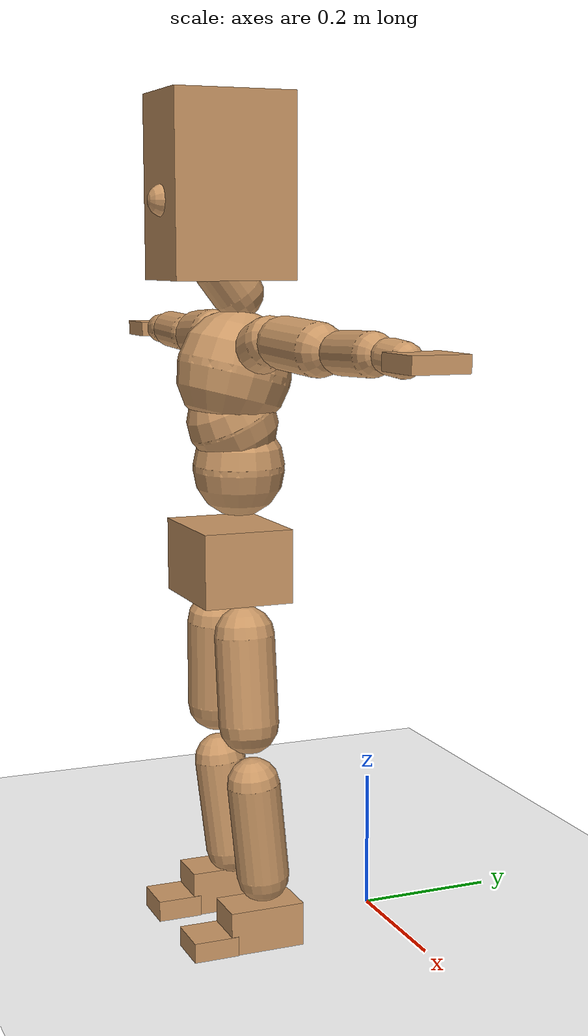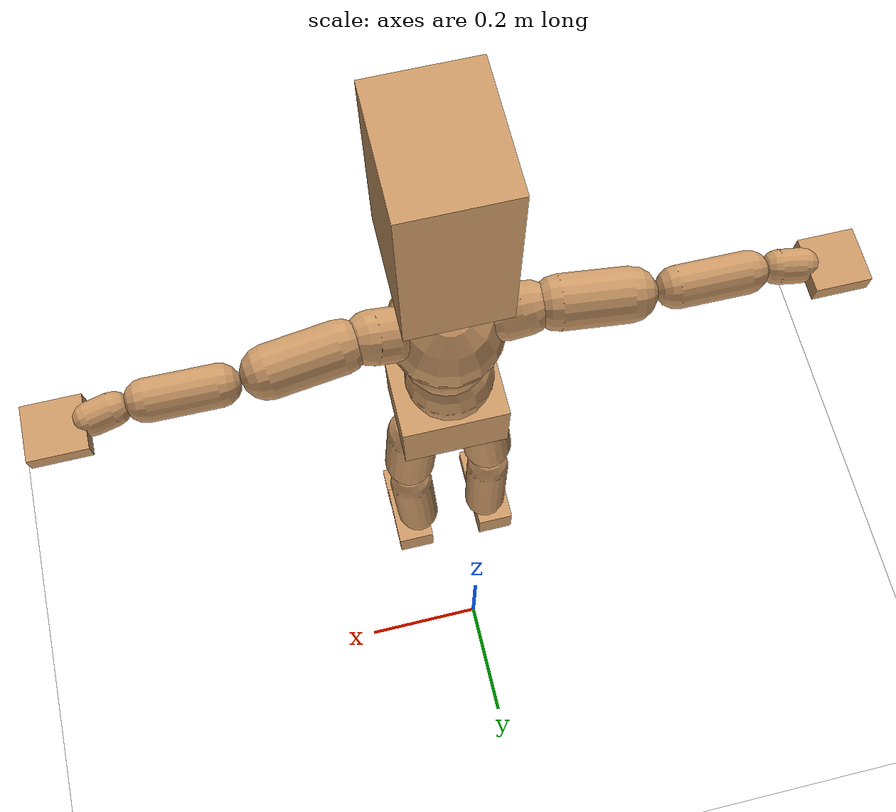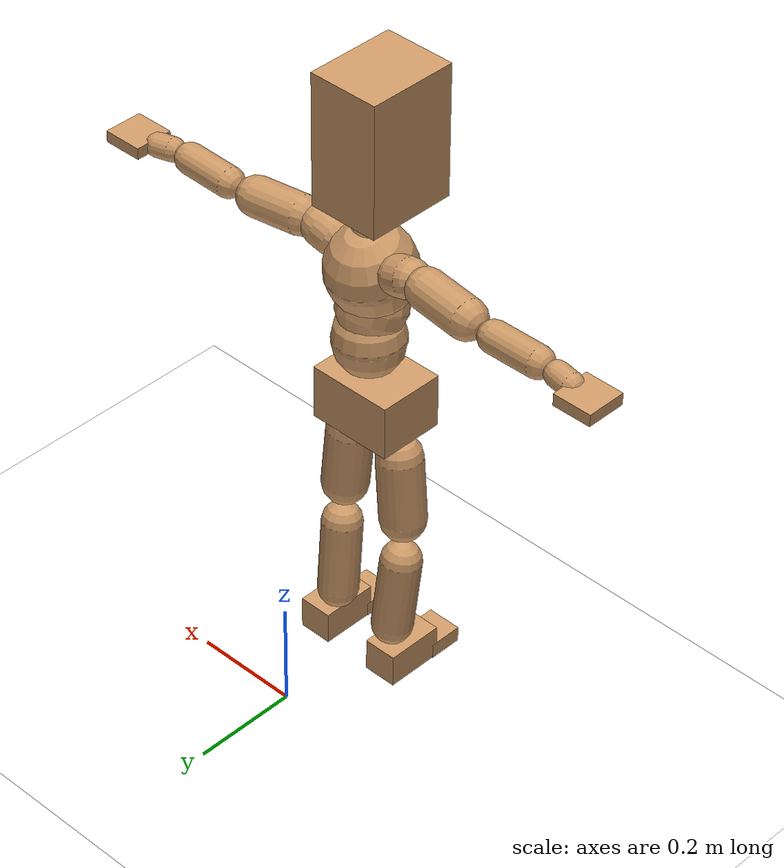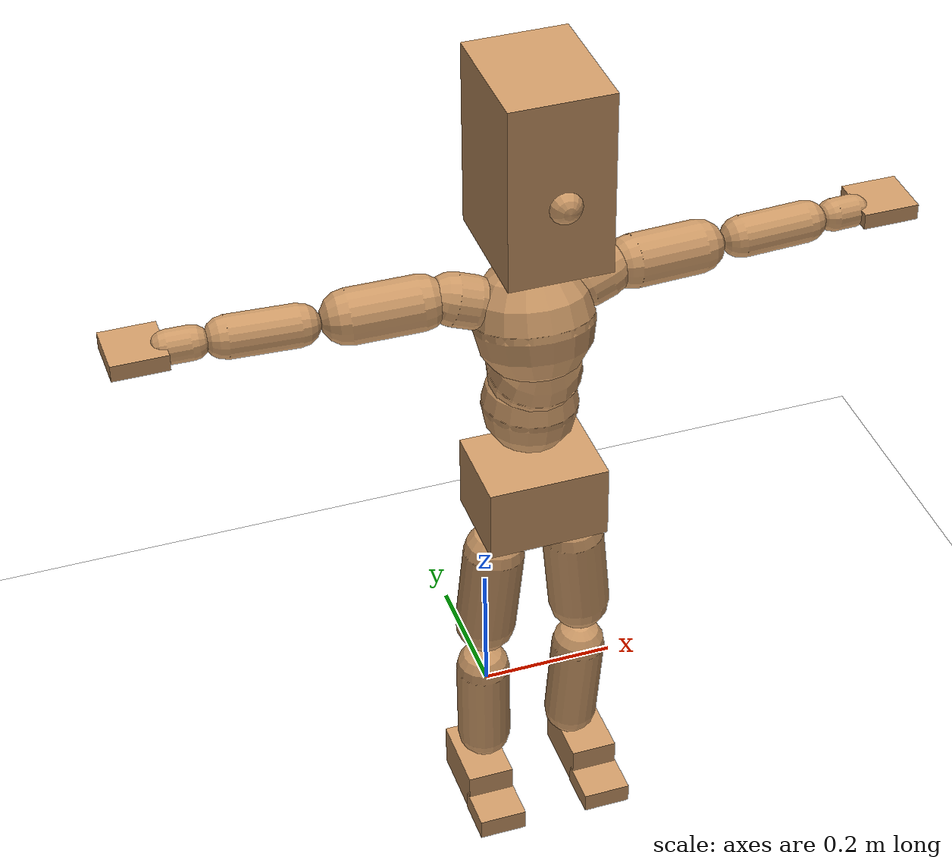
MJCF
<mujoco model="humanoid">
  <option integrator="implicitfast" />

  <visual>
    <global offwidth="1280" offheight="960" />
    <headlight active="1" ambient="0.34 0.34 0.34" diffuse="0.5 0.5 0.5" />
  </visual>

  <default>
    <joint damping="2" stiffness="2" armature="0.01" limited="true" solimplimit="0 .99 .01" />
    <geom condim="1" friction="0.7 0.005 0.0001" solimp=".99 .99 .003" solref="0.015 1" margin="0.001" rgba="0.8 0.6 .4 1" />
    <default class="smplcontact">
      <geom condim="3" friction="1. 0.005 0.0001" solref="0.015 1" solimp="0.98 0.98 0.001" priority="1" />
    </default>
    <default class="stiff_medium">
      <joint stiffness="10" />
    </default>
    <default class="stiff_medium_higher">
      <joint stiffness="50" />
    </default>
    <default class="stiff_high">
      <joint stiffness="100" />
    </default>
  </default>

  <asset>
    <texture type="skybox" builtin="gradient" rgb1="0.99 0.99 0.99" rgb2="0.608 0.828 0.892" width="100" />
    <texture builtin="flat" height="1278" mark="cross" markrgb="1 1 1" name="texgeom" random="0.01" rgb1="0.8 0.6 0.4" rgb2="0.8 0.6 0.4" type="cube" width="127" />
    <texture name="texplane" type="2d" builtin="checker" markrgb="1 1 1" rgb1="0.756 0.772 0.76" rgb2="0.6 0.6 0.6" width="100" height="100" />
    <material name="MatPlane" reflectance="0.5" texture="texplane" texrepeat="1 1" texuniform="true" />
    <material name="geom" texture="texgeom" texuniform="true" />
  </asset>

  <worldbody>
    <light name="tracking_light" pos="0 0 7" dir="0 0 -1" directional="true" cutoff="100" exponent="1" diffuse="1 1 1" specular="0.1 0.1 0.1" mode="trackcom" />
    <camera name="back" pos="0 3 2.4" xyaxes="-1 0 0 0 -1 2" mode="trackcom" />
    <camera name="side" pos="-3 0 2.4" xyaxes="0 -1 0 1 0 2" mode="trackcom" />
    <camera name="front_side" pos="-2.8 -2.8 0.8" xyaxes="0.5 -0.5 0 0.1 0.1 1" mode="trackcom" />
    <geom condim="3" name="floor" pos="0 0 0" rgba="1 1 1 1" size="100 100 .2" type="plane" material="MatPlane" />
    <body name="Pelvis" pos="-0.0018 -0.2233 0.557636" euler="90 0 0">
      <site name="Pelvis" size="0.01" />
      <freejoint name="Pelvis" />
      <geom type="box" pos="0 -0.00879489 -0.00427955" size="0.0831789 0.0524786 0.0645823" quat="1.0000 0.0000 0.0000 0.0000" density="3165.830099" name="Pelvis" />
      <body name="L_Hip" pos="0.054078 -0.0664341 -0.00529108">
        <joint name="L_Hip_x" type="hinge" pos="0 0 0" axis="1 0 0" stiffness="10" range="-160.0 22.92" class="stiff_medium" damping="15" />
        <joint name="L_Hip_y" type="hinge" pos="0 0 0" axis="0 1 0" stiffness="10" range="-70.0 70.0" class="stiff_medium" damping="10" />
        <joint name="L_Hip_z" type="hinge" pos="0 0 0" axis="0 0 1" stiffness="10" range="-28.65 90.0" class="stiff_medium" damping="10" />
        <geom type="capsule" density="2040.816327" fromto="0.00384213 -0.0416479 -0.00049989 0.0152261 -0.166705 -0.00199925" size="0.04305" name="L_Hip" />
        <body name="L_Knee" pos="0.0190683 -0.208353 -0.00249914">
          <joint name="L_Knee_x" type="hinge" pos="0 0 0" axis="1 0 0" range="-5.16 171.89" damping="8" />
          <joint name="L_Knee_y" type="hinge" pos="0 0 0" axis="0 1 0" range="-4.58 6.88" damping="8" />
          <joint name="L_Knee_z" type="hinge" pos="0 0 0" axis="0 0 1" range="-6.88 4.58" damping="8" />
          <geom type="capsule" density="1234.567901" fromto="-0.00158844 -0.046938 -0.0051228 -0.00642367 -0.187749 -0.0206309" size="0.0378754" name="L_Knee" />
          <body name="L_Ankle" pos="-0.00801211 -0.234687 -0.0257537">
            <joint name="L_Ankle_x" type="hinge" pos="0 0 0" axis="1 0 0" range="-45.84 45.84" class="stiff_medium" damping="6" />
            <joint name="L_Ankle_y" type="hinge" pos="0 0 0" axis="0 1 0" range="-74.48 22.92" class="stiff_medium" damping="3" />
            <joint name="L_Ankle_z" type="hinge" pos="0 0 0" axis="0 0 1" range="-4.58 4.58" class="stiff_medium" damping="6" />
            <geom type="box" pos="0.0157298 -0.0161349 0.0155315" size="0.0326073 0.0313246 0.0545528" quat="1.0000 0.0000 0.0000 0.0000" density="449.071558" name="L_Ankle" class="smplcontact" />
            <body name="L_Toe" pos="0.0178226 -0.0376706 0.0765665">
              <joint name="L_Toe_x" type="hinge" pos="0 0 0" axis="1 0 0" range="-91.67 22.92" />
              <joint name="L_Toe_y" type="hinge" pos="0 0 0" axis="0 1 0" range="-4.58 4.58" />
              <joint name="L_Toe_z" type="hinge" pos="0 0 0" axis="0 0 1" range="-4.58 4.58" />
              <geom type="box" pos="-0.0021057 0.00386045 0.0163153" size="0.0335508 0.014038 0.0326306" quat="1.0000 0.0000 0.0000 0.0000" density="423.206892" name="L_Toe" class="smplcontact" />
            </body>
          </body>
        </body>
      </body>
      <body name="R_Hip" pos="-0.0526774 -0.06578 -0.00334583">
        <joint name="R_Hip_x" type="hinge" pos="0 0 0" axis="1 0 0" stiffness="10" range="-160.0 22.92" class="stiff_medium" damping="15" />
        <joint name="R_Hip_y" type="hinge" pos="0 0 0" axis="0 1 0" stiffness="10" range="-70.0 70.0" class="stiff_medium" damping="10" />
        <joint name="R_Hip_z" type="hinge" pos="0 0 0" axis="0 0 1" stiffness="10" range="-90.0 28.65" class="stiff_medium" damping="10" />
        <geom type="capsule" density="2040.816327" fromto="-0.00428596 -0.0424807 -0.00100448 -0.0170027 -0.169982 -0.00394766" size="0.04242" name="R_Hip" />
        <body name="R_Knee" pos="-0.0212887 -0.212462 -0.00495214">
          <joint name="R_Knee_x" type="hinge" pos="0 0 0" axis="1 0 0" range="-5.16 171.89" damping="8" />
          <joint name="R_Knee_y" type="hinge" pos="0 0 0" axis="0 1 0" range="-6.88 4.58" damping="8" />
          <joint name="R_Knee_z" type="hinge" pos="0 0 0" axis="0 0 1" range="-4.58 6.88" damping="8" />
          <geom type="capsule" density="1234.567901" fromto="0.0018941 -0.0469951 -0.005019 0.00743692 -0.187924 -0.0199375" size="0.0378754" name="R_Knee" />
          <body name="R_Ankle" pos="0.00933102 -0.234919 -0.0249564">
            <joint name="R_Ankle_x" type="hinge" pos="0 0 0" axis="1 0 0" range="-45.84 45.84" class="stiff_medium" damping="6" />
            <joint name="R_Ankle_y" type="hinge" pos="0 0 0" axis="0 1 0" range="-22.92 74.48" class="stiff_medium" damping="3" />
            <joint name="R_Ankle_z" type="hinge" pos="0 0 0" axis="0 0 1" range="-4.58 4.58" class="stiff_medium" damping="6" />
            <geom type="box" pos="-0.0143121 -0.0117467 0.01643" size="0.0326073 0.0322698 0.0555155" quat="1.0000 0.0000 0.0000 0.0000" density="434.700981" name="R_Ankle" class="smplcontact" />
            <body name="R_Toe" pos="-0.0171475 -0.0324723 0.0791336">
              <joint name="R_Toe_x" type="hinge" pos="0 0 0" axis="1 0 0" range="-91.67 22.92" />
              <joint name="R_Toe_y" type="hinge" pos="0 0 0" axis="0 1 0" range="-4.58 4.58" />
              <joint name="R_Toe_z" type="hinge" pos="0 0 0" axis="0 0 1" range="-4.58 4.58" />
              <geom type="box" pos="0.00294798 0.00315855 0.0149338" size="0.033621 0.015161 0.0324333" quat="1.0000 0.0000 0.0000 0.0000" density="407.384095" name="R_Toe" class="smplcontact" />
            </body>
          </body>
        </body>
      </body>
      <body name="Torso" pos="-0.00194525 0.0792267 -0.0207753">
        <joint name="Torso_x" type="hinge" pos="0 0 0" axis="1 0 0" range="-25.78 57.3" class="stiff_medium" damping="15" />
        <joint name="Torso_y" type="hinge" pos="0 0 0" axis="0 1 0" range="-57.3 57.3" class="stiff_high" damping="20" />
        <joint name="Torso_z" type="hinge" pos="0 0 0" axis="0 0 1" range="-34.38 34.38" class="stiff_high" damping="20" />
        <geom type="capsule" density="2040.816327" fromto="0.00169404 0.0400433 0.000338807 0.00202335 0.0489349 0.000404671" size="0.0653727" name="Torso" />
        <body name="Spine" pos="0.00371668 0.0890441 0.000743336">
          <joint name="Spine_x" type="hinge" pos="0 0 0" axis="1 0 0" stiffness="10" range="-25.78 57.3" class="stiff_medium" damping="15" />
          <joint name="Spine_y" type="hinge" pos="0 0 0" axis="0 1 0" stiffness="10" range="-57.3 57.3" class="stiff_high" damping="8" />
          <joint name="Spine_z" type="hinge" pos="0 0 0" axis="0 0 1" stiffness="20" range="-34.38 34.38" class="stiff_high" damping="12" />
          <geom type="capsule" density="2040.816327" fromto="0.000557722 0.0182543 0.00872077 0.000634384 0.0223173 0.010714" size="0.064175" name="Spine" />
          <body name="Chest" pos="0.00119211 0.0405716 0.0194348">
            <joint name="Chest_x" type="hinge" pos="0 0 0" axis="1 0 0" stiffness="10" range="-25.78 57.3" class="stiff_medium" damping="15" />
            <joint name="Chest_y" type="hinge" pos="0 0 0" axis="0 1 0" stiffness="10" range="-57.3 57.3" class="stiff_high" damping="8" />
            <joint name="Chest_z" type="hinge" pos="0 0 0" axis="0 0 1" stiffness="20" range="-34.38 34.38" class="stiff_high" damping="12" />
            <geom type="capsule" density="2040.816327" fromto="-0.000676872 0.0472895 -0.0119587 -0.000746199 0.0577578 -0.0146624" size="0.0812822" name="Chest" />
            <body name="Neck" pos="-0.00210663 0.148641 -0.028376">
              <joint name="Neck_x" type="hinge" pos="0 0 0" axis="1 0 0" range="-28.65 57.3" class="stiff_medium_higher" damping="10" />
              <joint name="Neck_y" type="hinge" pos="0 0 0" axis="0 1 0" range="-40.11 40.11" class="stiff_medium_higher" damping="10" />
              <joint name="Neck_z" type="hinge" pos="0 0 0" axis="0 0 1" range="-40.11 40.11" class="stiff_medium_higher" damping="10" />
              <geom type="capsule" density="1000" fromto="0.000927511 0.0120251 0.00952511 0.00379478 0.0480973 0.0380129" size="0.03706" name="Neck" />
              <body name="Head" pos="0.00480704 0.0601192 0.0474504">
                <joint name="Head_x" type="hinge" pos="0 0 0" axis="1 0 0" range="-28.65 57.3" class="stiff_medium_higher" damping="2" />
                <joint name="Head_y" type="hinge" pos="0 0 0" axis="0 1 0" range="-40.11 40.11" class="stiff_medium_higher" damping="2" />
                <joint name="Head_z" type="hinge" pos="0 0 0" axis="0 0 1" range="-40.11 40.11" class="stiff_medium_higher" damping="2" />
                <geom type="box" pos="-0.00482034 0.0963249 -0.0133133" size="0.0695506 0.126894 0.0872252" quat="1.0000 0.0000 0.0000 0.0000" density="1018.069894" name="Head" />
                <geom type="capsule" name="nose" size="0.022954 0.011477" pos="0 0.076972 0.057385" quat="1 0 0 0" mass="0" contype="0" conaffinity="0" />
              </body>
            </body>
            <body name="L_Thorax" pos="0.0640177 0.0843527 -0.0239504">
              <joint name="L_Thorax_x" type="hinge" pos="0 0 0" axis="1 0 0" range="-10.89 4.58" class="stiff_medium_higher" damping="20" />
              <joint name="L_Thorax_y" type="hinge" pos="0 0 0" axis="0 1 0" range="-28.65 17.19" class="stiff_medium_higher" damping="20" />
              <joint name="L_Thorax_z" type="hinge" pos="0 0 0" axis="0 0 1" range="-31.51 40.11" class="stiff_medium_higher" damping="20" />
              <geom type="capsule" density="1000" fromto="0.00896859 0.00300595 -0.00089391 0.0358761 0.0120244 -0.00350582" size="0.03647" name="L_Thorax" />
              <body name="L_Shoulder" pos="0.0448447 0.0150304 -0.00439973">
                <joint name="L_Shoulder_x" type="hinge" pos="0 0 0" axis="1 0 0" range="-97.4 97.4" class="stiff_medium" damping="6" />
                <joint name="L_Shoulder_y" type="hinge" pos="0 0 0" axis="0 1 0" range="-108.86 80.21" class="stiff_medium" damping="6" />
                <joint name="L_Shoulder_z" type="hinge" pos="0 0 0" axis="0 0 1" range="-97.4 85.94" class="stiff_medium" damping="6" />
                <geom type="capsule" density="1000" fromto="0.0320055 -0.00160904 -0.00339201 0.128084 -0.00629582 -0.0135673" size="0.0361848" name="L_Shoulder" />
                <body name="L_Elbow" pos="0.16009 -0.00790486 -0.0169593">
                  <joint name="L_Elbow_x" type="hinge" pos="0 0 0" axis="1 0 0" range="-17.19 4.58" damping="5" />
                  <joint name="L_Elbow_y" type="hinge" pos="0 0 0" axis="0 1 0" range="-180.0 17.19" damping="5" />
                  <joint name="L_Elbow_z" type="hinge" pos="0 0 0" axis="0 0 1" range="-100.84 4.58" damping="5" />
                  <geom type="capsule" density="1000" fromto="0.0307297 0.00111091 -0.000120677 0.123042 0.00444305 -0.00055262" size="0.0283459" name="L_Elbow" />
                  <body name="L_Wrist" pos="0.153772 0.00555395 -0.000743287">
                    <joint name="L_Wrist_x" type="hinge" pos="0 0 0" axis="1 0 0" range="-180.0 22.92" />
                    <joint name="L_Wrist_y" type="hinge" pos="0 0 0" axis="0 1 0" range="-17.19 17.19" />
                    <joint name="L_Wrist_z" type="hinge" pos="0 0 0" axis="0 0 1" range="-22.92 22.92" />
                    <geom type="capsule" density="1000" fromto="0.010279 -0.000976015 -0.00183554 0.0411152 -0.00397398 -0.007342" size="0.02226" name="L_Wrist" class="smplcontact" />
                    <body name="L_Hand" pos="0.0513949 -0.00502006 -0.00910766">
                      <joint name="L_Hand_x" type="hinge" pos="0 0 0" axis="1 0 0" range="-17.19 17.19" />
                      <joint name="L_Hand_y" type="hinge" pos="0 0 0" axis="0 1 0" range="-51.57 51.57" />
                      <joint name="L_Hand_z" type="hinge" pos="0 0 0" axis="0 0 1" range="-91.67 91.67" />
                      <geom type="box" pos="0.0327194 0.0006996 -0.00405768" size="0.0388252 0.0110537 0.0376385" quat="1.0000 0.0000 0.0000 0.0000" density="400.552564" name="L_Hand" class="smplcontact" />
                    </body>
                  </body>
                </body>
              </body>
            </body>
            <body name="R_Thorax" pos="-0.0662615 0.0820748 -0.02762">
              <joint name="R_Thorax_x" type="hinge" pos="0 0 0" axis="1 0 0" range="-10.89 4.58" class="stiff_medium_higher" damping="20" />
              <joint name="R_Thorax_y" type="hinge" pos="0 0 0" axis="0 1 0" range="-17.19 28.65" class="stiff_medium_higher" damping="20" />
              <joint name="R_Thorax_z" type="hinge" pos="0 0 0" axis="0 0 1" range="-40.11 31.51" class="stiff_medium_higher" damping="20" />
              <geom type="capsule" density="1000" fromto="-0.00946258 0.00320348 -0.000880212 -0.0378486 0.0128133 -0.00359068" size="0.03577" name="R_Thorax" />
              <body name="R_Shoulder" pos="-0.0473049 0.0160847 -0.0044703">
                <joint name="R_Shoulder_x" type="hinge" pos="0 0 0" axis="1 0 0" range="-97.4 97.4" class="stiff_medium" damping="6" />
                <joint name="R_Shoulder_y" type="hinge" pos="0 0 0" axis="0 1 0" range="-80.21 108.86" class="stiff_medium" damping="6" />
                <joint name="R_Shoulder_z" type="hinge" pos="0 0 0" axis="0 0 1" range="-85.94 97.4" class="stiff_medium" damping="6" />
                <geom type="capsule" density="1000" fromto="-0.0312653 -0.00166808 -0.00265493 -0.125186 -0.00660153 -0.0105485" size="0.0371647" name="R_Shoulder" />
                <body name="R_Elbow" pos="-0.156452 -0.00819965 -0.0132034">
                  <joint name="R_Elbow_x" type="hinge" pos="0 0 0" axis="1 0 0" range="-17.19 4.58" damping="5" />
                  <joint name="R_Elbow_y" type="hinge" pos="0 0 0" axis="0 1 0" range="-17.19 180.0" damping="5" />
                  <joint name="R_Elbow_z" type="hinge" pos="0 0 0" axis="0 0 1" range="-4.58 100.84" damping="5" />
                  <geom type="capsule" density="1000" fromto="-0.0315317 0.000992651 -0.000678646 -0.126004 0.00383114 -0.00271495" size="0.0285559" name="R_Elbow" />
                  <body name="R_Wrist" pos="-0.157535 0.00482378 -0.00346358">
                    <joint name="R_Wrist_x" type="hinge" pos="0 0 0" axis="1 0 0" range="-180.0 22.92" />
                    <joint name="R_Wrist_y" type="hinge" pos="0 0 0" axis="0 1 0" range="-17.19 17.19" />
                    <joint name="R_Wrist_z" type="hinge" pos="0 0 0" axis="0 0 1" range="-22.92 22.92" />
                    <geom type="capsule" density="1000" fromto="-0.0103397 -0.000731456 -0.00128811 -0.0414206 -0.00299522 -0.00508146" size="0.02282" name="R_Wrist" class="smplcontact" />
                    <body name="R_Hand" pos="-0.0517614 -0.00372676 -0.0062997">
                      <joint name="R_Hand_x" type="hinge" pos="0 0 0" axis="1 0 0" range="-17.19 17.19" />
                      <joint name="R_Hand_y" type="hinge" pos="0 0 0" axis="0 1 0" range="-51.57 51.57" />
                      <joint name="R_Hand_z" type="hinge" pos="0 0 0" axis="0 0 1" range="-91.67 91.67" />
                      <geom type="box" pos="-0.030662 -0.00062964 -0.00552684" size="0.0377634 0.0114734 0.0381982" quat="1.0000 0.0000 0.0000 0.0000" density="403.679611" name="R_Hand" class="smplcontact" />
                    </body>
                  </body>
                </body>
              </body>
            </body>
          </body>
        </body>
      </body>
    </body>
  </worldbody>
  <actuator>
    <general name="L_Hip_x" joint="L_Hip_x" biastype="affine" gainprm="287.33006409732246" biasprm="-215.3247604770444 -180 -2.0" ctrllimited="true" ctrlrange="-1 1" forcerange="-360 360" />
    <general name="L_Hip_y" joint="L_Hip_y" biastype="affine" gainprm="219.9114857512855" biasprm="0.0 -180 -2.0" ctrllimited="true" ctrlrange="-1 1" forcerange="-360 360" />
    <general name="L_Hip_z" joint="L_Hip_z" biastype="affine" gainprm="186.3749841742145" biasprm="96.3683546488669 -180 -2.0" ctrllimited="true" ctrlrange="-1 1" forcerange="-360 360" />
    <general name="L_Knee_x" joint="L_Knee_x" biastype="affine" gainprm="278.10948965903646" biasprm="261.8988715665131 -180 -2.0" ctrllimited="true" ctrlrange="-1 1" forcerange="-360 360" />
    <general name="L_Knee_y" joint="L_Knee_y" biastype="affine" gainprm="18.001325905069514" biasprm="3.612831551628262 -180 -2.0" ctrllimited="true" ctrlrange="-1 1" forcerange="-360 360" />
    <general name="L_Knee_z" joint="L_Knee_z" biastype="affine" gainprm="18.001325905069514" biasprm="-3.612831551628262 -180 -2.0" ctrllimited="true" ctrlrange="-1 1" forcerange="-360 360" />
    <general name="L_Ankle_x" joint="L_Ankle_x" biastype="affine" gainprm="72.00530362027807" biasprm="0.0 -90 -2.0" ctrllimited="true" ctrlrange="-1 1" forcerange="-180 180" />
    <general name="L_Ankle_y" joint="L_Ankle_y" biastype="affine" gainprm="76.49778111491148" biasprm="-40.49512930477244 -90 -2.0" ctrllimited="true" ctrlrange="-1 1" forcerange="-180 180" />
    <general name="L_Ankle_z" joint="L_Ankle_z" biastype="affine" gainprm="7.1942471767206255" biasprm="0.0 -90 -2.0" ctrllimited="true" ctrlrange="-1 1" forcerange="-180 180" />
    <general name="L_Toe_x" joint="L_Toe_x" biastype="affine" gainprm="71.99902043497087" biasprm="-43.19689898685965 -72 -0.8" ctrllimited="true" ctrlrange="-1 1" forcerange="-144 144" />
    <general name="L_Toe_y" joint="L_Toe_y" biastype="affine" gainprm="5.755397741376501" biasprm="0.0 -72 -0.8" ctrllimited="true" ctrlrange="-1 1" forcerange="-144 144" />
    <general name="L_Toe_z" joint="L_Toe_z" biastype="affine" gainprm="5.755397741376501" biasprm="0.0 -72 -0.8" ctrllimited="true" ctrlrange="-1 1" forcerange="-144 144" />
    <general name="R_Hip_x" joint="R_Hip_x" biastype="affine" gainprm="287.33006409732246" biasprm="-215.3247604770444 -180 -2.0" ctrllimited="true" ctrlrange="-1 1" forcerange="-360 360" />
    <general name="R_Hip_y" joint="R_Hip_y" biastype="affine" gainprm="219.9114857512855" biasprm="0.0 -180 -2.0" ctrllimited="true" ctrlrange="-1 1" forcerange="-360 360" />
    <general name="R_Hip_z" joint="R_Hip_z" biastype="affine" gainprm="186.3749841742145" biasprm="-96.3683546488669 -180 -2.0" ctrllimited="true" ctrlrange="-1 1" forcerange="-360 360" />
    <general name="R_Knee_x" joint="R_Knee_x" biastype="affine" gainprm="278.10948965903646" biasprm="261.8988715665131 -180 -2.0" ctrllimited="true" ctrlrange="-1 1" forcerange="-360 360" />
    <general name="R_Knee_y" joint="R_Knee_y" biastype="affine" gainprm="18.001325905069514" biasprm="-3.612831551628262 -180 -2.0" ctrllimited="true" ctrlrange="-1 1" forcerange="-360 360" />
    <general name="R_Knee_z" joint="R_Knee_z" biastype="affine" gainprm="18.001325905069514" biasprm="3.612831551628262 -180 -2.0" ctrllimited="true" ctrlrange="-1 1" forcerange="-360 360" />
    <general name="R_Ankle_x" joint="R_Ankle_x" biastype="affine" gainprm="72.00530362027807" biasprm="0.0 -90 -2.0" ctrllimited="true" ctrlrange="-1 1" forcerange="-180 180" />
    <general name="R_Ankle_y" joint="R_Ankle_y" biastype="affine" gainprm="76.49778111491148" biasprm="40.49512930477244 -90 -2.0" ctrllimited="true" ctrlrange="-1 1" forcerange="-180 180" />
    <general name="R_Ankle_z" joint="R_Ankle_z" biastype="affine" gainprm="7.1942471767206255" biasprm="0.0 -90 -2.0" ctrllimited="true" ctrlrange="-1 1" forcerange="-180 180" />
    <general name="R_Toe_x" joint="R_Toe_x" biastype="affine" gainprm="71.99902043497087" biasprm="-43.19689898685965 -72 -0.8" ctrllimited="true" ctrlrange="-1 1" forcerange="-144 144" />
    <general name="R_Toe_y" joint="R_Toe_y" biastype="affine" gainprm="5.755397741376501" biasprm="0.0 -72 -0.8" ctrllimited="true" ctrlrange="-1 1" forcerange="-144 144" />
    <general name="R_Toe_z" joint="R_Toe_z" biastype="affine" gainprm="5.755397741376501" biasprm="0.0 -72 -0.8" ctrllimited="true" ctrlrange="-1 1" forcerange="-144 144" />
    <general name="Torso_x" joint="Torso_x" biastype="affine" gainprm="174.00234510682668" biasprm="66.0153336274335 -240 -4.0" ctrllimited="true" ctrlrange="-1 1" forcerange="-360 360" />
    <general name="Torso_y" joint="Torso_y" biastype="affine" gainprm="240.0176787342602" biasprm="0.0 -240 -4.0" ctrllimited="true" ctrlrange="-1 1" forcerange="-360 360" />
    <general name="Torso_z" joint="Torso_z" biastype="affine" gainprm="144.01060724055614" biasprm="0.0 -240 -4.0" ctrllimited="true" ctrlrange="-1 1" forcerange="-360 360" />
    <general name="Spine_x" joint="Spine_x" biastype="affine" gainprm="174.00234510682668" biasprm="66.0153336274335 -240 -4.0" ctrllimited="true" ctrlrange="-1 1" forcerange="-360 360" />
    <general name="Spine_y" joint="Spine_y" biastype="affine" gainprm="240.0176787342602" biasprm="0.0 -240 -4.0" ctrllimited="true" ctrlrange="-1 1" forcerange="-360 360" />
    <general name="Spine_z" joint="Spine_z" biastype="affine" gainprm="144.01060724055614" biasprm="0.0 -240 -4.0" ctrllimited="true" ctrlrange="-1 1" forcerange="-360 360" />
    <general name="Chest_x" joint="Chest_x" biastype="affine" gainprm="174.00234510682668" biasprm="66.0153336274335 -240 -4.0" ctrllimited="true" ctrlrange="-1 1" forcerange="-360 360" />
    <general name="Chest_y" joint="Chest_y" biastype="affine" gainprm="240.0176787342602" biasprm="0.0 -240 -4.0" ctrllimited="true" ctrlrange="-1 1" forcerange="-360 360" />
    <general name="Chest_z" joint="Chest_z" biastype="affine" gainprm="144.01060724055614" biasprm="0.0 -240 -4.0" ctrllimited="true" ctrlrange="-1 1" forcerange="-360 360" />
    <general name="Neck_x" joint="Neck_x" biastype="affine" gainprm="27.00198885760427" biasprm="9.000662952534757 -36 -0.8" ctrllimited="true" ctrlrange="-1 1" forcerange="-72 72" />
    <general name="Neck_y" joint="Neck_y" biastype="affine" gainprm="25.20185626709732" biasprm="0.0 -36 -0.8" ctrllimited="true" ctrlrange="-1 1" forcerange="-72 72" />
    <general name="Neck_z" joint="Neck_z" biastype="affine" gainprm="25.20185626709732" biasprm="0.0 -36 -0.8" ctrllimited="true" ctrlrange="-1 1" forcerange="-72 72" />
    <general name="Head_x" joint="Head_x" biastype="affine" gainprm="18.001325905069514" biasprm="6.000441968356505 -24 -0.8" ctrllimited="true" ctrlrange="-1 1" forcerange="-48 48" />
    <general name="Head_y" joint="Head_y" biastype="affine" gainprm="16.801237511398213" biasprm="0.0 -24 -0.8" ctrllimited="true" ctrlrange="-1 1" forcerange="-48 48" />
    <general name="Head_z" joint="Head_z" biastype="affine" gainprm="16.801237511398213" biasprm="0.0 -24 -0.8" ctrllimited="true" ctrlrange="-1 1" forcerange="-48 48" />
    <general name="L_Thorax_x" joint="L_Thorax_x" biastype="affine" gainprm="16.200146117011364" biasprm="-6.6078165480505335 -120 -1.6" ctrllimited="true" ctrlrange="-1 1" forcerange="-240 240" />
    <general name="L_Thorax_y" joint="L_Thorax_y" biastype="affine" gainprm="48.00353574685204" biasprm="-12.00088393671301 -120 -1.6" ctrllimited="true" ctrlrange="-1 1" forcerange="-240 240" />
    <general name="L_Thorax_z" joint="L_Thorax_z" biastype="affine" gainprm="75.00028861670033" biasprm="9.00589894029074 -120 -1.6" ctrllimited="true" ctrlrange="-1 1" forcerange="-240 240" />
    <general name="L_Shoulder_x" joint="L_Shoulder_x" biastype="affine" gainprm="81.5976331892389" biasprm="0.0 -48 -1.6" ctrllimited="true" ctrlrange="-1 1" forcerange="-96 96" />
    <general name="L_Shoulder_y" joint="L_Shoulder_y" biastype="affine" gainprm="79.19745640189629" biasprm="-12.00088393671301 -48 -1.6" ctrllimited="true" ctrlrange="-1 1" forcerange="-96 96" />
    <general name="L_Shoulder_z" joint="L_Shoulder_z" biastype="affine" gainprm="76.79727961455369" biasprm="-4.800353574685214 -48 -1.6" ctrllimited="true" ctrlrange="-1 1" forcerange="-96 96" />
    <general name="L_Elbow_x" joint="L_Elbow_x" biastype="affine" gainprm="13.67849441372996" biasprm="-7.923096672353461 -72 -0.8" ctrllimited="true" ctrlrange="-1 1" forcerange="-144 144" />
    <general name="L_Elbow_y" joint="L_Elbow_y" biastype="affine" gainprm="123.89813107227425" biasprm="-102.29653998619085 -72 -0.8" ctrllimited="true" ctrlrange="-1 1" forcerange="-144 144" />
    <general name="L_Elbow_z" joint="L_Elbow_z" biastype="affine" gainprm="66.23733950828719" biasprm="-60.4819417669107 -72 -0.8" ctrllimited="true" ctrlrange="-1 1" forcerange="-144 144" />
    <general name="L_Wrist_x" joint="L_Wrist_x" biastype="affine" gainprm="21.24973270888136" biasprm="-16.449379134196157 -12 -0.8" ctrllimited="true" ctrlrange="-1 1" forcerange="-24 24" />
    <general name="L_Wrist_y" joint="L_Wrist_y" biastype="affine" gainprm="3.6002651810139037" biasprm="0.0 -12 -0.8" ctrllimited="true" ctrlrange="-1 1" forcerange="-24 24" />
    <general name="L_Wrist_z" joint="L_Wrist_z" biastype="affine" gainprm="4.800353574685205" biasprm="0.0 -12 -0.8" ctrllimited="true" ctrlrange="-1 1" forcerange="-24 24" />
    <general name="L_Hand_x" joint="L_Hand_x" biastype="affine" gainprm="3.6002651810139037" biasprm="0.0 -12 -0.8" ctrllimited="true" ctrlrange="-1 1" forcerange="-24 24" />
    <general name="L_Hand_y" joint="L_Hand_y" biastype="affine" gainprm="10.800795543041708" biasprm="0.0 -12 -0.8" ctrllimited="true" ctrlrange="-1 1" forcerange="-24 24" />
    <general name="L_Hand_z" joint="L_Hand_z" biastype="affine" gainprm="19.199319903638422" biasprm="0.0 -12 -0.8" ctrllimited="true" ctrlrange="-1 1" forcerange="-24 24" />
    <general name="R_Thorax_x" joint="R_Thorax_x" biastype="affine" gainprm="16.200146117011364" biasprm="-6.6078165480505335 -120 -1.6" ctrllimited="true" ctrlrange="-1 1" forcerange="-240 240" />
    <general name="R_Thorax_y" joint="R_Thorax_y" biastype="affine" gainprm="48.00353574685204" biasprm="12.000883936713002 -120 -1.6" ctrllimited="true" ctrlrange="-1 1" forcerange="-240 240" />
    <general name="R_Thorax_z" joint="R_Thorax_z" biastype="affine" gainprm="75.00028861670033" biasprm="-9.00589894029074 -120 -1.6" ctrllimited="true" ctrlrange="-1 1" forcerange="-240 240" />
    <general name="R_Shoulder_x" joint="R_Shoulder_x" biastype="affine" gainprm="81.5976331892389" biasprm="0.0 -48 -1.6" ctrllimited="true" ctrlrange="-1 1" forcerange="-96 96" />
    <general name="R_Shoulder_y" joint="R_Shoulder_y" biastype="affine" gainprm="79.19745640189629" biasprm="12.00088393671301 -48 -1.6" ctrllimited="true" ctrlrange="-1 1" forcerange="-96 96" />
    <general name="R_Shoulder_z" joint="R_Shoulder_z" biastype="affine" gainprm="76.79727961455369" biasprm="4.800353574685204 -48 -1.6" ctrllimited="true" ctrlrange="-1 1" forcerange="-96 96" />
    <general name="R_Elbow_x" joint="R_Elbow_x" biastype="affine" gainprm="13.67849441372996" biasprm="-7.923096672353461 -72 -0.8" ctrllimited="true" ctrlrange="-1 1" forcerange="-144 144" />
    <general name="R_Elbow_y" joint="R_Elbow_y" biastype="affine" gainprm="123.89813107227425" biasprm="102.29653998619085 -72 -0.8" ctrllimited="true" ctrlrange="-1 1" forcerange="-144 144" />
    <general name="R_Elbow_z" joint="R_Elbow_z" biastype="affine" gainprm="66.23733950828719" biasprm="60.481941766910694 -72 -0.8" ctrllimited="true" ctrlrange="-1 1" forcerange="-144 144" />
    <general name="R_Wrist_x" joint="R_Wrist_x" biastype="affine" gainprm="21.24973270888136" biasprm="-16.449379134196157 -12 -0.8" ctrllimited="true" ctrlrange="-1 1" forcerange="-24 24" />
    <general name="R_Wrist_y" joint="R_Wrist_y" biastype="affine" gainprm="3.6002651810139037" biasprm="0.0 -12 -0.8" ctrllimited="true" ctrlrange="-1 1" forcerange="-24 24" />
    <general name="R_Wrist_z" joint="R_Wrist_z" biastype="affine" gainprm="4.800353574685205" biasprm="0.0 -12 -0.8" ctrllimited="true" ctrlrange="-1 1" forcerange="-24 24" />
    <general name="R_Hand_x" joint="R_Hand_x" biastype="affine" gainprm="3.6002651810139037" biasprm="0.0 -12 -0.8" ctrllimited="true" ctrlrange="-1 1" forcerange="-24 24" />
    <general name="R_Hand_y" joint="R_Hand_y" biastype="affine" gainprm="10.800795543041708" biasprm="0.0 -12 -0.8" ctrllimited="true" ctrlrange="-1 1" forcerange="-24 24" />
    <general name="R_Hand_z" joint="R_Hand_z" biastype="affine" gainprm="19.199319903638422" biasprm="0.0 -12 -0.8" ctrllimited="true" ctrlrange="-1 1" forcerange="-24 24" />
  </actuator>
  <contact>
    <exclude body1="Torso" body2="Chest" />
    <exclude body1="Head" body2="Chest" />
    <exclude body1="R_Knee" body2="R_Toe" />
    <exclude body1="R_Knee" body2="L_Ankle" />
    <exclude body1="R_Knee" body2="L_Toe" />
    <exclude body1="L_Knee" body2="L_Toe" />
    <exclude body1="L_Knee" body2="R_Ankle" />
    <exclude body1="L_Knee" body2="R_Toe" />
    <exclude body1="L_Shoulder" body2="Chest" />
    <exclude body1="R_Shoulder" body2="Chest" />
  </contact>
  <sensor>
    <framelinvel name="sensor_Pelvis_framelinvel" objtype="xbody" objname="Pelvis" />
    <framelinvel name="sensor_L_Hip_framelinvel" objtype="xbody" objname="L_Hip" />
    <framelinvel name="sensor_L_Knee_framelinvel" objtype="xbody" objname="L_Knee" />
    <framelinvel name="sensor_L_Ankle_framelinvel" objtype="xbody" objname="L_Ankle" />
    <framelinvel name="sensor_L_Toe_framelinvel" objtype="xbody" objname="L_Toe" />
    <framelinvel name="sensor_R_Hip_framelinvel" objtype="xbody" objname="R_Hip" />
    <framelinvel name="sensor_R_Knee_framelinvel" objtype="xbody" objname="R_Knee" />
    <framelinvel name="sensor_R_Ankle_framelinvel" objtype="xbody" objname="R_Ankle" />
    <framelinvel name="sensor_R_Toe_framelinvel" objtype="xbody" objname="R_Toe" />
    <framelinvel name="sensor_Torso_framelinvel" objtype="xbody" objname="Torso" />
    <framelinvel name="sensor_Spine_framelinvel" objtype="xbody" objname="Spine" />
    <framelinvel name="sensor_Chest_framelinvel" objtype="xbody" objname="Chest" />
    <framelinvel name="sensor_Neck_framelinvel" objtype="xbody" objname="Neck" />
    <framelinvel name="sensor_Head_framelinvel" objtype="xbody" objname="Head" />
    <framelinvel name="sensor_L_Thorax_framelinvel" objtype="xbody" objname="L_Thorax" />
    <framelinvel name="sensor_L_Shoulder_framelinvel" objtype="xbody" objname="L_Shoulder" />
    <framelinvel name="sensor_L_Elbow_framelinvel" objtype="xbody" objname="L_Elbow" />
    <framelinvel name="sensor_L_Wrist_framelinvel" objtype="xbody" objname="L_Wrist" />
    <framelinvel name="sensor_L_Hand_framelinvel" objtype="xbody" objname="L_Hand" />
    <framelinvel name="sensor_R_Thorax_framelinvel" objtype="xbody" objname="R_Thorax" />
    <framelinvel name="sensor_R_Shoulder_framelinvel" objtype="xbody" objname="R_Shoulder" />
    <framelinvel name="sensor_R_Elbow_framelinvel" objtype="xbody" objname="R_Elbow" />
    <framelinvel name="sensor_R_Wrist_framelinvel" objtype="xbody" objname="R_Wrist" />
    <framelinvel name="sensor_R_Hand_framelinvel" objtype="xbody" objname="R_Hand" />
    <frameangvel name="sensor_Pelvis_frameangvel" objtype="xbody" objname="Pelvis" />
    <frameangvel name="sensor_L_Hip_frameangvel" objtype="xbody" objname="L_Hip" />
    <frameangvel name="sensor_L_Knee_frameangvel" objtype="xbody" objname="L_Knee" />
    <frameangvel name="sensor_L_Ankle_frameangvel" objtype="xbody" objname="L_Ankle" />
    <frameangvel name="sensor_L_Toe_frameangvel" objtype="xbody" objname="L_Toe" />
    <frameangvel name="sensor_R_Hip_frameangvel" objtype="xbody" objname="R_Hip" />
    <frameangvel name="sensor_R_Knee_frameangvel" objtype="xbody" objname="R_Knee" />
    <frameangvel name="sensor_R_Ankle_frameangvel" objtype="xbody" objname="R_Ankle" />
    <frameangvel name="sensor_R_Toe_frameangvel" objtype="xbody" objname="R_Toe" />
    <frameangvel name="sensor_Torso_frameangvel" objtype="xbody" objname="Torso" />
    <frameangvel name="sensor_Spine_frameangvel" objtype="xbody" objname="Spine" />
    <frameangvel name="sensor_Chest_frameangvel" objtype="xbody" objname="Chest" />
    <frameangvel name="sensor_Neck_frameangvel" objtype="xbody" objname="Neck" />
    <frameangvel name="sensor_Head_frameangvel" objtype="xbody" objname="Head" />
    <frameangvel name="sensor_L_Thorax_frameangvel" objtype="xbody" objname="L_Thorax" />
    <frameangvel name="sensor_L_Shoulder_frameangvel" objtype="xbody" objname="L_Shoulder" />
    <frameangvel name="sensor_L_Elbow_frameangvel" objtype="xbody" objname="L_Elbow" />
    <frameangvel name="sensor_L_Wrist_frameangvel" objtype="xbody" objname="L_Wrist" />
    <frameangvel name="sensor_L_Hand_frameangvel" objtype="xbody" objname="L_Hand" />
    <frameangvel name="sensor_R_Thorax_frameangvel" objtype="xbody" objname="R_Thorax" />
    <frameangvel name="sensor_R_Shoulder_frameangvel" objtype="xbody" objname="R_Shoulder" />
    <frameangvel name="sensor_R_Elbow_frameangvel" objtype="xbody" objname="R_Elbow" />
    <frameangvel name="sensor_R_Wrist_frameangvel" objtype="xbody" objname="R_Wrist" />
    <frameangvel name="sensor_R_Hand_frameangvel" objtype="xbody" objname="R_Hand" />
    <subtreelinvel name="Chest_subtreelinvel" body="Chest" />
    <gyro name="Pelvis_gyro" site="Pelvis" />
  </sensor>
</mujoco>
